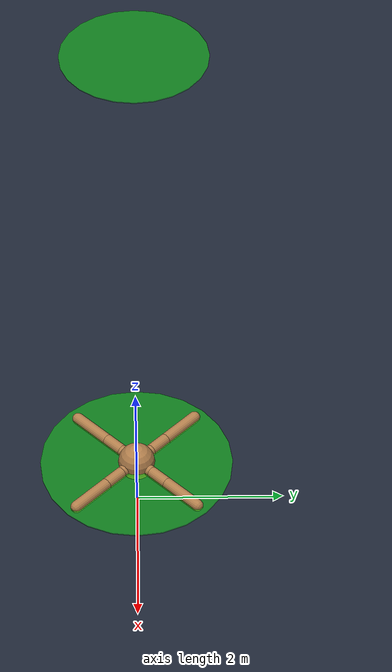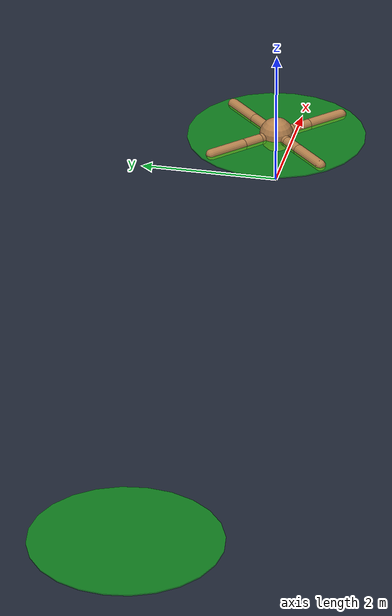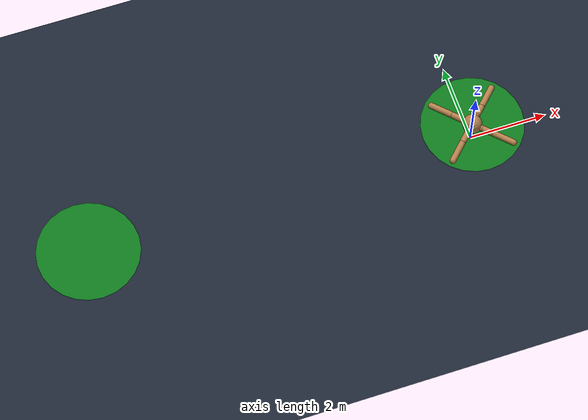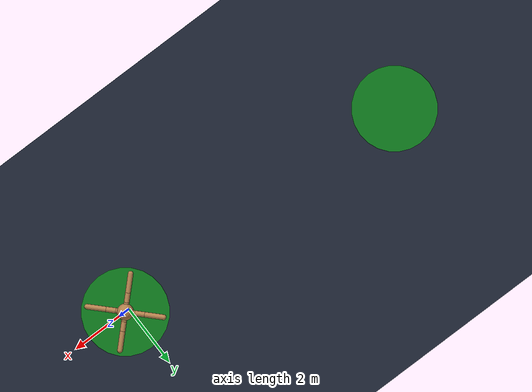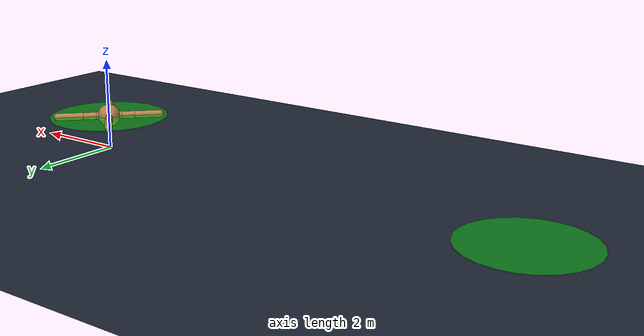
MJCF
<mujoco model="ant">
    <compiler inertiafromgeom="true" angle="degree" coordinate="local"/>

    <option timestep="0.02" integrator="RK4"/>

    <custom>
        <numeric name="init_qpos" data="0.0 0.0 0.55 1.0 0.0 0.0 0.0 0.0 1.0 0.0 -1.0 0.0 -1.0 0.0 1.0"/>
    </custom>

    <default>
        <joint limited="true" armature="1" damping="1"/>
        <geom condim="3" conaffinity="0" margin="0.01" friction="1 0.5 0.5" solref=".02 1" solimp=".8 .8 .01" density="5.0" material="self"/>
    </default>

    <!-- Useless -->

    <asset>
        <texture type="skybox" builtin="gradient" width="100" height="100" rgb1="1 1 1" rgb2="0 0 0"/>
        <texture name="grid" type="2d" builtin="checker" rgb1=".08 .11 .16" rgb2=".15 .18 .25" width="300" height="300"/>
        <texture name="ball" builtin="checker" mark="cross" width="151" height="151" rgb1="0.1 0.1 0.1" rgb2="0.9 0.9 0.9" markrgb="1 1 1"/>
        <texture name="teleport_in" type="2d" builtin="gradient" rgb1=".1 .1 .1" rgb2="0.35 0.55 0.91" width="300" height="300"/>
        <texture name="teleport_out" type="2d" builtin="gradient" rgb1=".9 .9 .9" rgb2="0.35 0.55 0.91" width="300" height="300"/>
        <material name="grid" texture="grid" texrepeat="1 1" texuniform="true"/>
        <material name="self" rgba=".7 .5 .3 1"/>
        <material name="self_white" rgba=".8 .8 .8 1"/>
        <material name="wall" rgba="1 1 1 1"/>
        <material name="ball" texture="ball"/>
        <material name="target" rgba="0.96 0.26 0.33 1"/>
        <material name="subgoal_waypnt" rgba="1.0 0.35 0.11 1"/>
        <material name="teleport_in" texture="teleport_in"/>
        <material name="teleport_out" texture="teleport_out"/>

        <!-- ori color: rgba="1.0 0.35 0.11 1" , too orange when no-reflection -->
        <material name="matte_material"
          rgba="1. 0.933 0.196 0.9"
          specular="0.0"
          shininess="0.0"
          reflectance="0.0"
          emission="0.0" />    <!-- Feb 24, usually 0 unless you want the geom to glow -->

    </asset>

    <worldbody>
        <light name="global" directional="true" cutoff="100" ambient=".2 .2 .2" exponent="1" diffuse="1 1 1" specular=".1 .1 .1" pos="0 0 1.3" dir="-0 0 -1.3"/>
        <geom name="floor" type="plane" conaffinity="1" size="100 100 .2" material="grid"/>

        <!-- ====== Ant Marker, New Feb 17======= -->
        <!-- matte_material, added on Mar 2 -->
        <geom
            name="marker_1"
            type="cylinder"
            size="1.3 0.01"
            pos="-10 0 0.01"
            rgba="0 1 0 0.4"
            material="matte_material"
            contype="0"
            conaffinity="0"
            density="0"/>

        <body name="torso" pos="0 0 0.75">
            <!-- Dec 31 Added for visualization -->
            <geom
            name="visual_circle"
            type="cylinder"
            size="1.3 0.01"
            pos="0 0 -0.01"
            rgba="0 1 0 0.4"
            contype="0"
            conaffinity="0"
            density="0"/>

            <camera name="back" pos="0 -2.5 5" xyaxes="1 0 0 0 2 1" mode="trackcom"/>
            <camera name="back_luo_v1" pos="0 -3.5 7" xyaxes="1 0 0 0 2 1" mode="trackcom"/>
            <camera name="back_luo_v2" pos="0 -3 6" xyaxes="1 0 0 0 2 1" mode="trackcom"/>
            <camera name="back_luo_v3" pos="0 -5 10" xyaxes="1 0 0 0 2 1" mode="trackcom"/>

            <geom name="torso_geom" type="sphere" size="0.25" pos="0 0 0"/>
            <joint name="root" type="free" limited="false" pos="0 0 0" axis="0 0 1" margin="0.01" armature="0" damping="0"/>
            <light name="torso_light" pos="0 0 8" mode="trackcom"/>
            <body name="front_left_leg" pos="0 0 0">
                <geom name="aux_1_geom" type="capsule" size="0.08" fromto="0.0 0.0 0.0 0.2 0.2 0.0"/>
                <body name="aux_1" pos="0.2 0.2 0">
                    <joint name="hip_1" type="hinge" pos="0.0 0.0 0.0" axis="0 0 1" range="-30 30"/>
                    <geom name="left_leg_geom" type="capsule" size="0.08" fromto="0.0 0.0 0.0 0.2 0.2 0.0"/>
                    <body pos="0.2 0.2 0">
                        <joint name="ankle_1" type="hinge" pos="0.0 0.0 0.0" axis="-1 1 0" range="30 70"/>
                        <geom name="left_ankle_geom" type="capsule" size="0.08" fromto="0.0 0.0 0.0 0.4 0.4 0.0"/>
                    </body>
                </body>
            </body>
            <body name="front_right_leg" pos="0 0 0">
                <geom name="aux_2_geom" type="capsule" size="0.08" fromto="0.0 0.0 0.0 -0.2 0.2 0.0"/>
                <body name="aux_2" pos="-0.2 0.2 0">
                    <joint name="hip_2" type="hinge" pos="0.0 0.0 0.0" axis="0 0 1" range="-30 30"/>
                    <geom name="right_leg_geom" type="capsule" size="0.08" fromto="0.0 0.0 0.0 -0.2 0.2 0.0"/>
                    <body pos="-0.2 0.2 0">
                        <joint name="ankle_2" type="hinge" pos="0.0 0.0 0.0" axis="1 1 0" range="-70 -30"/>
                        <geom name="right_ankle_geom" type="capsule" size="0.08" fromto="0.0 0.0 0.0 -0.4 0.4 0.0"/>
                    </body>
                </body>
            </body>
            <body name="back_leg" pos="0 0 0">
                <geom name="aux_3_geom" type="capsule" size="0.08" fromto="0.0 0.0 0.0 -0.2 -0.2 0.0"/>
                <body name="aux_3" pos="-0.2 -0.2 0">
                    <joint name="hip_3" type="hinge" pos="0.0 0.0 0.0" axis="0 0 1" range="-30 30"/>
                    <geom name="back_leg_geom" type="capsule" size="0.08" fromto="0.0 0.0 0.0 -0.2 -0.2 0.0"/>
                    <body pos="-0.2 -0.2 0">
                        <joint name="ankle_3" type="hinge" pos="0.0 0.0 0.0" axis="-1 1 0" range="-70 -30"/>
                        <geom name="third_ankle_geom" type="capsule" size="0.08" fromto="0.0 0.0 0.0 -0.4 -0.4 0.0"/>
                    </body>
                </body>
            </body>
            <body name="right_back_leg" pos="0 0 0">
                <geom name="aux_4_geom" type="capsule" size="0.08" fromto="0.0 0.0 0.0 0.2 -0.2 0.0"/>
                <body name="aux_4" pos="0.2 -0.2 0">
                    <joint name="hip_4" type="hinge" pos="0.0 0.0 0.0" axis="0 0 1" range="-30 30"/>
                    <geom name="rightback_leg_geom" type="capsule" size="0.08" fromto="0.0 0.0 0.0 0.2 -0.2 0.0"/>
                    <body pos="0.2 -0.2 0">
                        <joint name="ankle_4" type="hinge" pos="0.0 0.0 0.0" axis="1 1 0" range="30 70"/>
                        <geom name="fourth_ankle_geom" type="capsule" size="0.08" fromto="0.0 0.0 0.0 0.4 -0.4 0.0"/>
                    </body>
                </body>
            </body>
        </body>
    </worldbody>

    <actuator>
        <motor ctrllimited="true" ctrlrange="-1.0 1.0" joint="hip_4" gear="30"/>
        <motor ctrllimited="true" ctrlrange="-1.0 1.0" joint="ankle_4" gear="30"/>
        <motor ctrllimited="true" ctrlrange="-1.0 1.0" joint="hip_1" gear="30"/>
        <motor ctrllimited="true" ctrlrange="-1.0 1.0" joint="ankle_1" gear="30"/>
        <motor ctrllimited="true" ctrlrange="-1.0 1.0" joint="hip_2" gear="30"/>
        <motor ctrllimited="true" ctrlrange="-1.0 1.0" joint="ankle_2" gear="30"/>
        <motor ctrllimited="true" ctrlrange="-1.0 1.0" joint="hip_3" gear="30"/>
        <motor ctrllimited="true" ctrlrange="-1.0 1.0" joint="ankle_3" gear="30"/>
    </actuator>
</mujoco>
